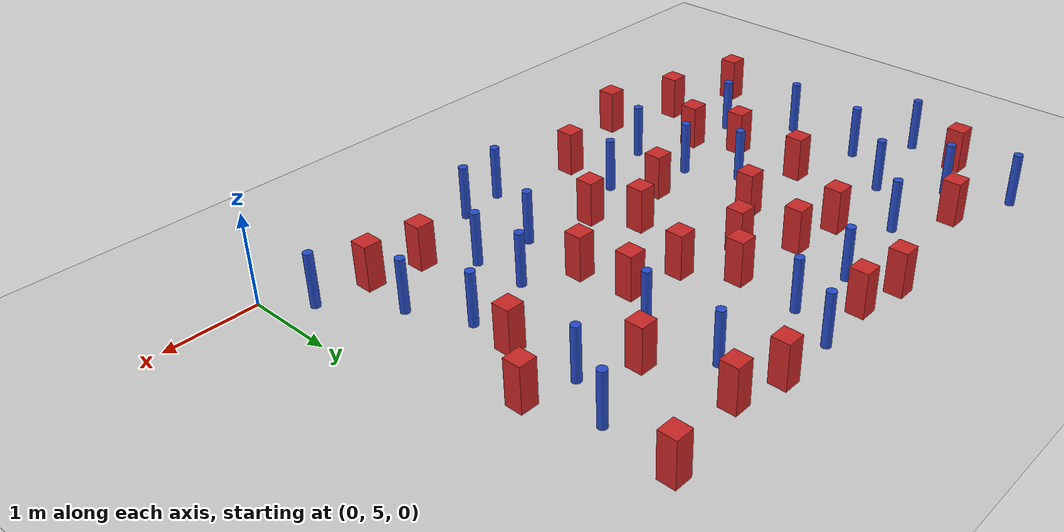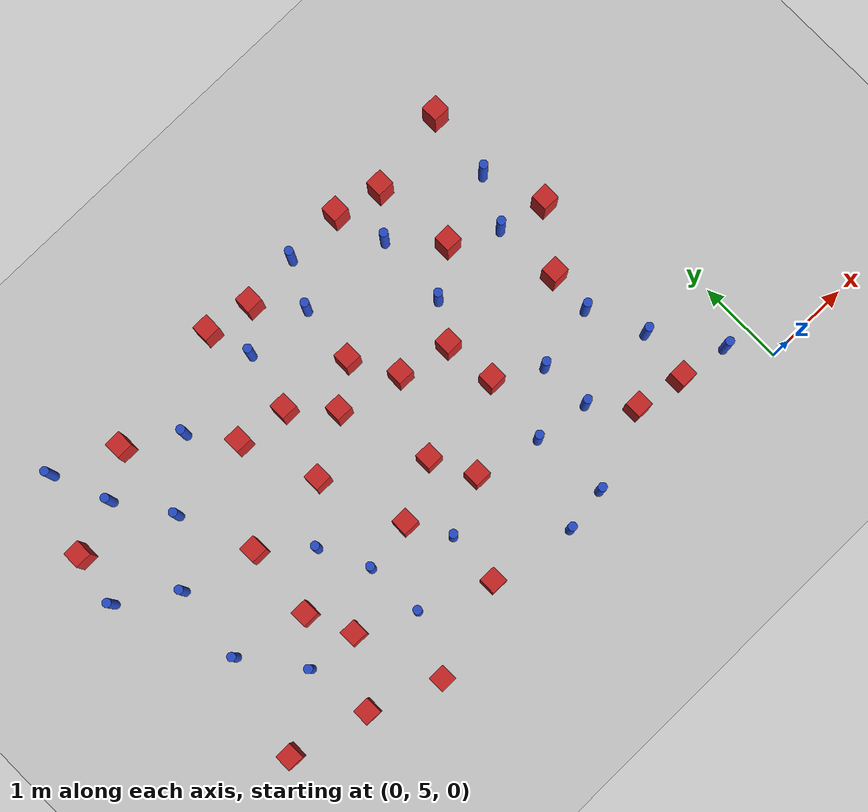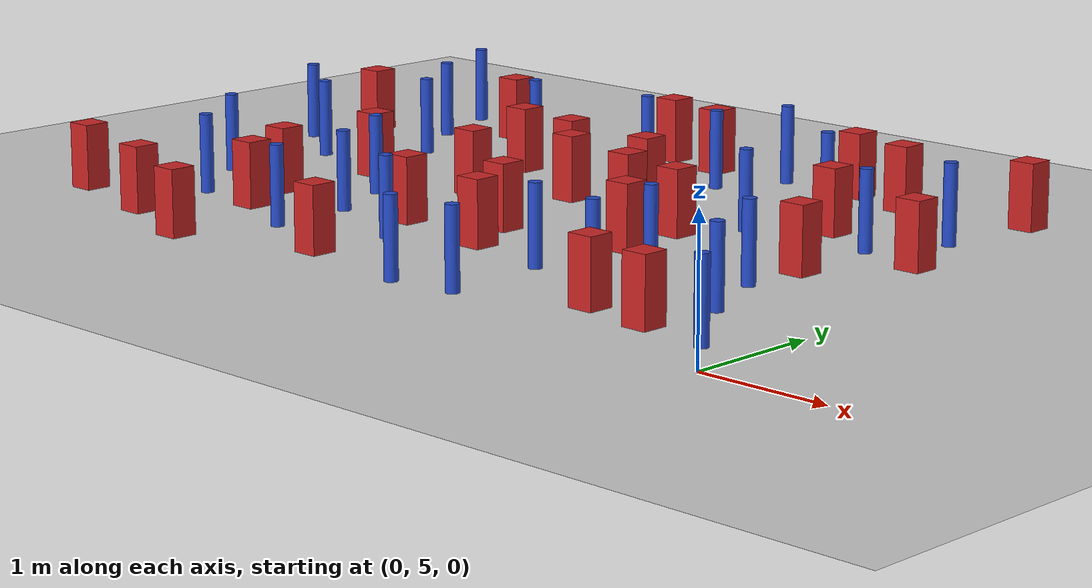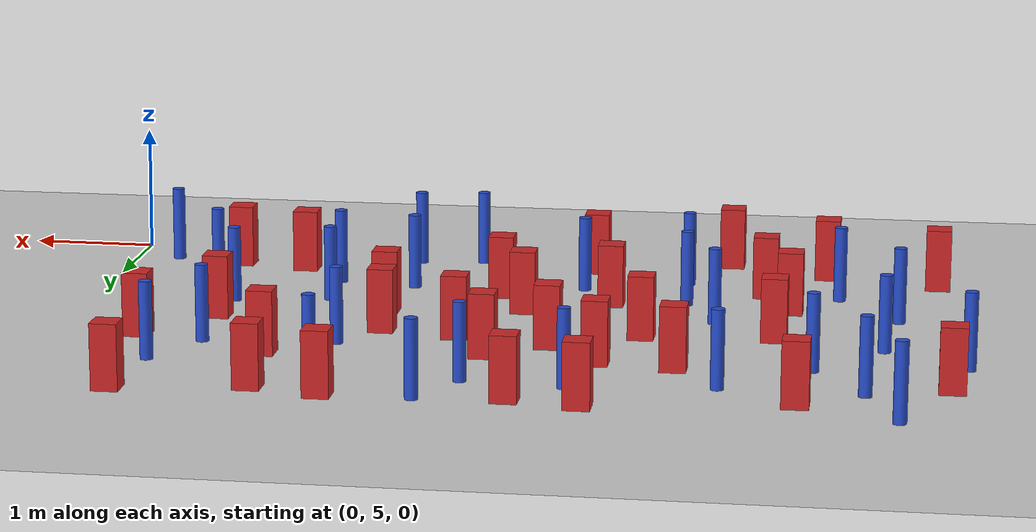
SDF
<sdf version="1.6">
 <world name="default">
  <model name="ground_plane">
   <static>1</static>
   <link name="link">
    <collision name="collision">
     <geometry><plane><normal>0 0 1</normal><size>100 100</size></plane></geometry>
     <surface><friction><ode><mu>100</mu><mu2>50</mu2></ode></friction></surface>
    </collision>
    <visual name="visual">
     <cast_shadows>0</cast_shadows>
     <geometry><plane><normal>0 0 1</normal><size>100 100</size></plane></geometry>
     <material>
      <ambient>1.0 1.0 1.0 1.0</ambient>
      <diffuse>0.8 0.8 0.8 1.0</diffuse>
      <specular>0.01 0.01 0.01 1.000000</specular>
     </material>
    </visual>
   </link>
  </model>
  <model name="pole_obstacle13">
   <static>true</static>
   <pose>-6.44039647918 9.48726860901 7.38925637345e-09 -8.471706928e-08 1.24976765081e-08 -1.74513093015e-07</pose>
   <link name="link">
    <pose>0 0 0.3 0 -0 0</pose>
    <inertial>
     <mass>1</mass>
     <inertia><ixx>0.145833</ixx><ixy>0</ixy><ixz>0</ixz><iyy>0.145833</iyy><iyz>0</iyz><izz>0.125</izz></inertia>
    </inertial>
    <collision name="collision">
     <geometry><cylinder><radius>0.05</radius><length>.6</length></cylinder></geometry>
    </collision>
    <visual name="visual">
     <geometry><cylinder><radius>0.05</radius><length>.6</length></cylinder></geometry>
     <material>
      <script><name>Gazebo/Blue</name><uri>file://media/materials/scripts/gazebo.material</uri></script>
     </material>
    </visual>
   </link>
  </model>
  <model name="square_post_obstacle23">
   <static>true</static>
   <pose>-3.88642827105 5.38813392325 1.91545236811e-07 -7.35059704564e-06 1.12565212e-07 2.39332434364e-05</pose>
   <link name="link">
    <pose>0 0 0.25 0 -0 0</pose>
    <inertial>
     <mass>100</mass>
     <inertia>
      <ixx>0.166667</ixx>
      <ixy>0</ixy>
      <ixz>0</ixz>
      <iyy>0.166667</iyy>
      <iyz>0</iyz>
      <izz>0.166667</izz>
     </inertia>
    </inertial>
    <collision name="collision"><geometry><box><size>.2 .2 .5</size></box></geometry></collision>
    <visual name="visual">
     <geometry><box><size>.2 .2 .5</size></box></geometry>
     <material>
      <script><name>Gazebo/Red</name><uri>file://media/materials/scripts/gazebo.material</uri></script>
     </material>
    </visual>
   </link>
  </model>
  <model name="pole_obstacle17">
   <static>true</static>
   <pose>-3.26010692896 8.86807212109 7.38925637345e-09 -8.47170692793e-08 1.24976764408e-08 -1.74513093041e-07</pose>
   <link name="link">
    <pose>0 0 0.3 0 -0 0</pose>
    <inertial>
     <mass>1</mass>
     <inertia><ixx>0.145833</ixx><ixy>0</ixy><ixz>0</ixz><iyy>0.145833</iyy><iyz>0</iyz><izz>0.125</izz></inertia>
    </inertial>
    <collision name="collision">
     <geometry><cylinder><radius>0.05</radius><length>.6</length></cylinder></geometry>
    </collision>
    <visual name="visual">
     <geometry><cylinder><radius>0.05</radius><length>.6</length></cylinder></geometry>
     <material>
      <script><name>Gazebo/Blue</name><uri>file://media/materials/scripts/gazebo.material</uri></script>
     </material>
    </visual>
   </link>
  </model>
  <model name="pole_obstacle27">
   <static>true</static>
   <pose>-5.12375333443 8.80899562639 7.38925637345e-09 -8.471706928e-08 1.24976765081e-08 -1.74513093015e-07</pose>
   <link name="link">
    <pose>0 0 0.3 0 -0 0</pose>
    <inertial>
     <mass>1</mass>
     <inertia><ixx>0.145833</ixx><ixy>0</ixy><ixz>0</ixz><iyy>0.145833</iyy><iyz>0</iyz><izz>0.125</izz></inertia>
    </inertial>
    <collision name="collision">
     <geometry><cylinder><radius>0.05</radius><length>.6</length></cylinder></geometry>
    </collision>
    <visual name="visual">
     <geometry><cylinder><radius>0.05</radius><length>.6</length></cylinder></geometry>
     <material>
      <script><name>Gazebo/Blue</name><uri>file://media/materials/scripts/gazebo.material</uri></script>
     </material>
    </visual>
   </link>
  </model>
  <model name="pole_obstacle30">
   <static>true</static>
   <pose>-5.90218762142 6.07693218608 7.38925637345e-09 -8.47170692796e-08 1.24976764786e-08 -1.74513093032e-07</pose>
   <link name="link">
    <pose>0 0 0.3 0 -0 0</pose>
    <inertial>
     <mass>1</mass>
     <inertia><ixx>0.145833</ixx><ixy>0</ixy><ixz>0</ixz><iyy>0.145833</iyy><iyz>0</iyz><izz>0.125</izz></inertia>
    </inertial>
    <collision name="collision">
     <geometry><cylinder><radius>0.05</radius><length>.6</length></cylinder></geometry>
    </collision>
    <visual name="visual">
     <geometry><cylinder><radius>0.05</radius><length>.6</length></cylinder></geometry>
     <material>
      <script><name>Gazebo/Blue</name><uri>file://media/materials/scripts/gazebo.material</uri></script>
     </material>
    </visual>
   </link>
  </model>
  <model name="pole_obstacle34">
   <static>true</static>
   <pose>-2.1779624521 7.95526782129 7.38925637345e-09 -8.47170692799e-08 1.24976765031e-08 -1.7451309302e-07</pose>
   <link name="link">
    <pose>0 0 0.3 0 -0 0</pose>
    <inertial>
     <mass>1</mass>
     <inertia><ixx>0.145833</ixx><ixy>0</ixy><ixz>0</ixz><iyy>0.145833</iyy><iyz>0</iyz><izz>0.125</izz></inertia>
    </inertial>
    <collision name="collision">
     <geometry><cylinder><radius>0.05</radius><length>.6</length></cylinder></geometry>
    </collision>
    <visual name="visual">
     <geometry><cylinder><radius>0.05</radius><length>.6</length></cylinder></geometry>
     <material>
      <script><name>Gazebo/Blue</name><uri>file://media/materials/scripts/gazebo.material</uri></script>
     </material>
    </visual>
   </link>
  </model>
  <model name="square_post_obstacle45">
   <static>true</static>
   <pose>-5.70250792023 9.16631879683 1.91545236811e-07 -7.35059704564e-06 1.12565212e-07 2.39332434364e-05</pose>
   <link name="link">
    <pose>0 0 0.25 0 -0 0</pose>
    <inertial>
     <mass>100</mass>
     <inertia>
      <ixx>0.166667</ixx>
      <ixy>0</ixy>
      <ixz>0</ixz>
      <iyy>0.166667</iyy>
      <iyz>0</iyz>
      <izz>0.166667</izz>
     </inertia>
    </inertial>
    <collision name="collision"><geometry><box><size>.2 .2 .5</size></box></geometry></collision>
    <visual name="visual">
     <geometry><box><size>.2 .2 .5</size></box></geometry>
     <material>
      <script><name>Gazebo/Red</name><uri>file://media/materials/scripts/gazebo.material</uri></script>
     </material>
    </visual>
   </link>
  </model>
  <model name="square_post_obstacle48">
   <static>true</static>
   <pose>-5.53184064909 6.52471061674 1.91545236811e-07 -7.35059704564e-06 1.12565212e-07 2.39332434364e-05</pose>
   <link name="link">
    <pose>0 0 0.25 0 -0 0</pose>
    <inertial>
     <mass>100</mass>
     <inertia>
      <ixx>0.166667</ixx>
      <ixy>0</ixy>
      <ixz>0</ixz>
      <iyy>0.166667</iyy>
      <iyz>0</iyz>
      <izz>0.166667</izz>
     </inertia>
    </inertial>
    <collision name="collision"><geometry><box><size>.2 .2 .5</size></box></geometry></collision>
    <visual name="visual">
     <geometry><box><size>.2 .2 .5</size></box></geometry>
     <material>
      <script><name>Gazebo/Red</name><uri>file://media/materials/scripts/gazebo.material</uri></script>
     </material>
    </visual>
   </link>
  </model>
  <model name="pole_obstacle46">
   <static>true</static>
   <pose>-4.02825660925 8.93498802025 7.38925637345e-09 -8.47170692799e-08 1.24976765075e-08 -1.74513093015e-07</pose>
   <link name="link">
    <pose>0 0 0.3 0 -0 0</pose>
    <inertial>
     <mass>1</mass>
     <inertia><ixx>0.145833</ixx><ixy>0</ixy><ixz>0</ixz><iyy>0.145833</iyy><iyz>0</iyz><izz>0.125</izz></inertia>
    </inertial>
    <collision name="collision">
     <geometry><cylinder><radius>0.05</radius><length>.6</length></cylinder></geometry>
    </collision>
    <visual name="visual">
     <geometry><cylinder><radius>0.05</radius><length>.6</length></cylinder></geometry>
     <material>
      <script><name>Gazebo/Blue</name><uri>file://media/materials/scripts/gazebo.material</uri></script>
     </material>
    </visual>
   </link>
  </model>
  <model name="pole_obstacle47">
   <static>true</static>
   <pose>-1.85244232559 6.04111435008 7.38925637345e-09 -8.47170692799e-08 1.24976765033e-08 -1.74513093018e-07</pose>
   <link name="link">
    <pose>0 0 0.3 0 -0 0</pose>
    <inertial>
     <mass>1</mass>
     <inertia><ixx>0.145833</ixx><ixy>0</ixy><ixz>0</ixz><iyy>0.145833</iyy><iyz>0</iyz><izz>0.125</izz></inertia>
    </inertial>
    <collision name="collision">
     <geometry><cylinder><radius>0.05</radius><length>.6</length></cylinder></geometry>
    </collision>
    <visual name="visual">
     <geometry><cylinder><radius>0.05</radius><length>.6</length></cylinder></geometry>
     <material>
      <script><name>Gazebo/Blue</name><uri>file://media/materials/scripts/gazebo.material</uri></script>
     </material>
    </visual>
   </link>
  </model>
  <model name="pole_obstacle50">
   <static>true</static>
   <pose>-3.85083431688 6.02337493945 7.38925637345e-09 -8.47170692798e-08 1.24976765033e-08 -1.74513093019e-07</pose>
   <link name="link">
    <pose>0 0 0.3 0 -0 0</pose>
    <inertial>
     <mass>1</mass>
     <inertia><ixx>0.145833</ixx><ixy>0</ixy><ixz>0</ixz><iyy>0.145833</iyy><iyz>0</iyz><izz>0.125</izz></inertia>
    </inertial>
    <collision name="collision">
     <geometry><cylinder><radius>0.05</radius><length>.6</length></cylinder></geometry>
    </collision>
    <visual name="visual">
     <geometry><cylinder><radius>0.05</radius><length>.6</length></cylinder></geometry>
     <material>
      <script><name>Gazebo/Blue</name><uri>file://media/materials/scripts/gazebo.material</uri></script>
     </material>
    </visual>
   </link>
  </model>
  <model name="pole_obstacle57">
   <static>true</static>
   <pose>-2.99184152287 9.38304316959 7.38925637345e-09 -8.47170692793e-08 1.24976764408e-08 -1.74513093041e-07</pose>
   <link name="link">
    <pose>0 0 0.3 0 -0 0</pose>
    <inertial>
     <mass>1</mass>
     <inertia><ixx>0.145833</ixx><ixy>0</ixy><ixz>0</ixz><iyy>0.145833</iyy><iyz>0</iyz><izz>0.125</izz></inertia>
    </inertial>
    <collision name="collision">
     <geometry><cylinder><radius>0.05</radius><length>.6</length></cylinder></geometry>
    </collision>
    <visual name="visual">
     <geometry><cylinder><radius>0.05</radius><length>.6</length></cylinder></geometry>
     <material>
      <script><name>Gazebo/Blue</name><uri>file://media/materials/scripts/gazebo.material</uri></script>
     </material>
    </visual>
   </link>
  </model>
  <model name="square_post_obstacle69">
   <static>true</static>
   <pose>-4.97964011506 5.03403945031 1.91545236811e-07 -7.35059704564e-06 1.12565212e-07 2.39332434364e-05</pose>
   <link name="link">
    <pose>0 0 0.25 0 -0 0</pose>
    <inertial>
     <mass>100</mass>
     <inertia>
      <ixx>0.166667</ixx>
      <ixy>0</ixy>
      <ixz>0</ixz>
      <iyy>0.166667</iyy>
      <iyz>0</iyz>
      <izz>0.166667</izz>
     </inertia>
    </inertial>
    <collision name="collision"><geometry><box><size>.2 .2 .5</size></box></geometry></collision>
    <visual name="visual">
     <geometry><box><size>.2 .2 .5</size></box></geometry>
     <material>
      <script><name>Gazebo/Red</name><uri>file://media/materials/scripts/gazebo.material</uri></script>
     </material>
    </visual>
   </link>
  </model>
  <model name="square_post_obstacle72">
   <static>true</static>
   <pose>-2.38393506014 6.93142251107 1.91545236811e-07 -7.35059704564e-06 1.12565212e-07 2.39332434364e-05</pose>
   <link name="link">
    <pose>0 0 0.25 0 -0 0</pose>
    <inertial>
     <mass>100</mass>
     <inertia>
      <ixx>0.166667</ixx>
      <ixy>0</ixy>
      <ixz>0</ixz>
      <iyy>0.166667</iyy>
      <iyz>0</iyz>
      <izz>0.166667</izz>
     </inertia>
    </inertial>
    <collision name="collision"><geometry><box><size>.2 .2 .5</size></box></geometry></collision>
    <visual name="visual">
     <geometry><box><size>.2 .2 .5</size></box></geometry>
     <material>
      <script><name>Gazebo/Red</name><uri>file://media/materials/scripts/gazebo.material</uri></script>
     </material>
    </visual>
   </link>
  </model>
  <model name="pole_obstacle77">
   <static>true</static>
   <pose>-6.18366212318 8.84186964665 7.38925637345e-09 -8.471706928e-08 1.24976765081e-08 -1.74513093015e-07</pose>
   <link name="link">
    <pose>0 0 0.3 0 -0 0</pose>
    <inertial>
     <mass>1</mass>
     <inertia><ixx>0.145833</ixx><ixy>0</ixy><ixz>0</ixz><iyy>0.145833</iyy><iyz>0</iyz><izz>0.125</izz></inertia>
    </inertial>
    <collision name="collision">
     <geometry><cylinder><radius>0.05</radius><length>.6</length></cylinder></geometry>
    </collision>
    <visual name="visual">
     <geometry><cylinder><radius>0.05</radius><length>.6</length></cylinder></geometry>
     <material>
      <script><name>Gazebo/Blue</name><uri>file://media/materials/scripts/gazebo.material</uri></script>
     </material>
    </visual>
   </link>
  </model>
  <model name="pole_obstacle82">
   <static>true</static>
   <pose>-1.15674981613 8.0379942242 7.38925637345e-09 -8.471706928e-08 1.24976765113e-08 -1.74513093014e-07</pose>
   <link name="link">
    <pose>0 0 0.3 0 -0 0</pose>
    <inertial>
     <mass>1</mass>
     <inertia><ixx>0.145833</ixx><ixy>0</ixy><ixz>0</ixz><iyy>0.145833</iyy><iyz>0</iyz><izz>0.125</izz></inertia>
    </inertial>
    <collision name="collision">
     <geometry><cylinder><radius>0.05</radius><length>.6</length></cylinder></geometry>
    </collision>
    <visual name="visual">
     <geometry><cylinder><radius>0.05</radius><length>.6</length></cylinder></geometry>
     <material>
      <script><name>Gazebo/Blue</name><uri>file://media/materials/scripts/gazebo.material</uri></script>
     </material>
    </visual>
   </link>
  </model>
  <model name="pole_obstacle89">
   <static>true</static>
   <pose>-1.12663115622 6.76977434522 7.38925637345e-09 -8.47170692799e-08 1.24976765033e-08 -1.74513093018e-07</pose>
   <link name="link">
    <pose>0 0 0.3 0 -0 0</pose>
    <inertial>
     <mass>1</mass>
     <inertia><ixx>0.145833</ixx><ixy>0</ixy><ixz>0</ixz><iyy>0.145833</iyy><iyz>0</iyz><izz>0.125</izz></inertia>
    </inertial>
    <collision name="collision">
     <geometry><cylinder><radius>0.05</radius><length>.6</length></cylinder></geometry>
    </collision>
    <visual name="visual">
     <geometry><cylinder><radius>0.05</radius><length>.6</length></cylinder></geometry>
     <material>
      <script><name>Gazebo/Blue</name><uri>file://media/materials/scripts/gazebo.material</uri></script>
     </material>
    </visual>
   </link>
  </model>
  <model name="pole_obstacle95">
   <static>true</static>
   <pose>-4.96622983246 6.94463585222 7.38925637345e-09 -8.47170692796e-08 1.24976764786e-08 -1.74513093032e-07</pose>
   <link name="link">
    <pose>0 0 0.3 0 -0 0</pose>
    <inertial>
     <mass>1</mass>
     <inertia><ixx>0.145833</ixx><ixy>0</ixy><ixz>0</ixz><iyy>0.145833</iyy><iyz>0</iyz><izz>0.125</izz></inertia>
    </inertial>
    <collision name="collision">
     <geometry><cylinder><radius>0.05</radius><length>.6</length></cylinder></geometry>
    </collision>
    <visual name="visual">
     <geometry><cylinder><radius>0.05</radius><length>.6</length></cylinder></geometry>
     <material>
      <script><name>Gazebo/Blue</name><uri>file://media/materials/scripts/gazebo.material</uri></script>
     </material>
    </visual>
   </link>
  </model>
  <model name="square_post_obstacle90">
   <static>true</static>
   <pose>-4.18159011079 8.24602097663 1.91545236811e-07 -7.35059704564e-06 1.12565212e-07 2.39332434364e-05</pose>
   <link name="link">
    <pose>0 0 0.25 0 -0 0</pose>
    <inertial>
     <mass>100</mass>
     <inertia>
      <ixx>0.166667</ixx>
      <ixy>0</ixy>
      <ixz>0</ixz>
      <iyy>0.166667</iyy>
      <iyz>0</iyz>
      <izz>0.166667</izz>
     </inertia>
    </inertial>
    <collision name="collision"><geometry><box><size>.2 .2 .5</size></box></geometry></collision>
    <visual name="visual">
     <geometry><box><size>.2 .2 .5</size></box></geometry>
     <material>
      <script><name>Gazebo/Red</name><uri>file://media/materials/scripts/gazebo.material</uri></script>
     </material>
    </visual>
   </link>
  </model>
  <model name="pole_obstacle102">
   <static>true</static>
   <pose>-1.87773299122 6.63169610025 7.38925637345e-09 -8.47170692799e-08 1.24976765033e-08 -1.74513093018e-07</pose>
   <link name="link">
    <pose>0 0 0.3 0 -0 0</pose>
    <inertial>
     <mass>1</mass>
     <inertia><ixx>0.145833</ixx><ixy>0</ixy><ixz>0</ixz><iyy>0.145833</iyy><iyz>0</iyz><izz>0.125</izz></inertia>
    </inertial>
    <collision name="collision">
     <geometry><cylinder><radius>0.05</radius><length>.6</length></cylinder></geometry>
    </collision>
    <visual name="visual">
     <geometry><cylinder><radius>0.05</radius><length>.6</length></cylinder></geometry>
     <material>
      <script><name>Gazebo/Blue</name><uri>file://media/materials/scripts/gazebo.material</uri></script>
     </material>
    </visual>
   </link>
  </model>
  <model name="square_post_obstacle92">
   <static>true</static>
   <pose>-3.2173856991 6.30843144289 1.91545236811e-07 -7.35059704564e-06 1.12565212e-07 2.39332434364e-05</pose>
   <link name="link">
    <pose>0 0 0.25 0 -0 0</pose>
    <inertial>
     <mass>100</mass>
     <inertia>
      <ixx>0.166667</ixx>
      <ixy>0</ixy>
      <ixz>0</ixz>
      <iyy>0.166667</iyy>
      <iyz>0</iyz>
      <izz>0.166667</izz>
     </inertia>
    </inertial>
    <collision name="collision"><geometry><box><size>.2 .2 .5</size></box></geometry></collision>
    <visual name="visual">
     <geometry><box><size>.2 .2 .5</size></box></geometry>
     <material>
      <script><name>Gazebo/Red</name><uri>file://media/materials/scripts/gazebo.material</uri></script>
     </material>
    </visual>
   </link>
  </model>
  <model name="square_post_obstacle93">
   <static>true</static>
   <pose>-3.32841613555 8.15983913552 1.91545236811e-07 -7.35059704564e-06 1.12565212e-07 2.39332434364e-05</pose>
   <link name="link">
    <pose>0 0 0.25 0 -0 0</pose>
    <inertial>
     <mass>100</mass>
     <inertia>
      <ixx>0.166667</ixx>
      <ixy>0</ixy>
      <ixz>0</ixz>
      <iyy>0.166667</iyy>
      <iyz>0</iyz>
      <izz>0.166667</izz>
     </inertia>
    </inertial>
    <collision name="collision"><geometry><box><size>.2 .2 .5</size></box></geometry></collision>
    <visual name="visual">
     <geometry><box><size>.2 .2 .5</size></box></geometry>
     <material>
      <script><name>Gazebo/Red</name><uri>file://media/materials/scripts/gazebo.material</uri></script>
     </material>
    </visual>
   </link>
  </model>
  <model name="square_post_obstacle101">
   <static>true</static>
   <pose>-1.77780974908 9.25629348462 1.91545236811e-07 -7.35059704564e-06 1.12565212e-07 2.39332434364e-05</pose>
   <link name="link">
    <pose>0 0 0.25 0 -0 0</pose>
    <inertial>
     <mass>100</mass>
     <inertia>
      <ixx>0.166667</ixx>
      <ixy>0</ixy>
      <ixz>0</ixz>
      <iyy>0.166667</iyy>
      <iyz>0</iyz>
      <izz>0.166667</izz>
     </inertia>
    </inertial>
    <collision name="collision"><geometry><box><size>.2 .2 .5</size></box></geometry></collision>
    <visual name="visual">
     <geometry><box><size>.2 .2 .5</size></box></geometry>
     <material>
      <script><name>Gazebo/Red</name><uri>file://media/materials/scripts/gazebo.material</uri></script>
     </material>
    </visual>
   </link>
  </model>
  <model name="pole_obstacle115">
   <static>true</static>
   <pose>-6.2924871837 7.6079009055 7.38925637345e-09 -8.47170692796e-08 1.24976764786e-08 -1.74513093032e-07</pose>
   <link name="link">
    <pose>0 0 0.3 0 -0 0</pose>
    <inertial>
     <mass>1</mass>
     <inertia><ixx>0.145833</ixx><ixy>0</ixy><ixz>0</ixz><iyy>0.145833</iyy><iyz>0</iyz><izz>0.125</izz></inertia>
    </inertial>
    <collision name="collision">
     <geometry><cylinder><radius>0.05</radius><length>.6</length></cylinder></geometry>
    </collision>
    <visual name="visual">
     <geometry><cylinder><radius>0.05</radius><length>.6</length></cylinder></geometry>
     <material>
      <script><name>Gazebo/Blue</name><uri>file://media/materials/scripts/gazebo.material</uri></script>
     </material>
    </visual>
   </link>
  </model>
  <model name="square_post_obstacle108">
   <static>true</static>
   <pose>-4.7677067139 8.32890515588 1.91545236811e-07 -7.35059704564e-06 1.12565212e-07 2.39332434364e-05</pose>
   <link name="link">
    <pose>0 0 0.25 0 -0 0</pose>
    <inertial>
     <mass>100</mass>
     <inertia>
      <ixx>0.166667</ixx>
      <ixy>0</ixy>
      <ixz>0</ixz>
      <iyy>0.166667</iyy>
      <iyz>0</iyz>
      <izz>0.166667</izz>
     </inertia>
    </inertial>
    <collision name="collision"><geometry><box><size>.2 .2 .5</size></box></geometry></collision>
    <visual name="visual">
     <geometry><box><size>.2 .2 .5</size></box></geometry>
     <material>
      <script><name>Gazebo/Red</name><uri>file://media/materials/scripts/gazebo.material</uri></script>
     </material>
    </visual>
   </link>
  </model>
  <model name="pole_obstacle122">
   <static>true</static>
   <pose>-4.67218156826 5.71932839307 7.38925637345e-09 -8.47170692796e-08 1.24976764786e-08 -1.74513093032e-07</pose>
   <link name="link">
    <pose>0 0 0.3 0 -0 0</pose>
    <inertial>
     <mass>1</mass>
     <inertia><ixx>0.145833</ixx><ixy>0</ixy><ixz>0</ixz><iyy>0.145833</iyy><iyz>0</iyz><izz>0.125</izz></inertia>
    </inertial>
    <collision name="collision">
     <geometry><cylinder><radius>0.05</radius><length>.6</length></cylinder></geometry>
    </collision>
    <visual name="visual">
     <geometry><cylinder><radius>0.05</radius><length>.6</length></cylinder></geometry>
     <material>
      <script><name>Gazebo/Blue</name><uri>file://media/materials/scripts/gazebo.material</uri></script>
     </material>
    </visual>
   </link>
  </model>
  <model name="square_post_obstacle115">
   <static>true</static>
   <pose>-0.781212544834 9.42266509782 1.91545236811e-07 -7.35059704564e-06 1.12565212e-07 2.39332434364e-05</pose>
   <link name="link">
    <pose>0 0 0.25 0 -0 0</pose>
    <inertial>
     <mass>100</mass>
     <inertia>
      <ixx>0.166667</ixx>
      <ixy>0</ixy>
      <ixz>0</ixz>
      <iyy>0.166667</iyy>
      <iyz>0</iyz>
      <izz>0.166667</izz>
     </inertia>
    </inertial>
    <collision name="collision"><geometry><box><size>.2 .2 .5</size></box></geometry></collision>
    <visual name="visual">
     <geometry><box><size>.2 .2 .5</size></box></geometry>
     <material>
      <script><name>Gazebo/Red</name><uri>file://media/materials/scripts/gazebo.material</uri></script>
     </material>
    </visual>
   </link>
  </model>
  <model name="square_post_obstacle117">
   <static>true</static>
   <pose>-6.67382146757 5.56837264222 1.91545236811e-07 -7.35059704564e-06 1.12565212e-07 2.39332434364e-05</pose>
   <link name="link">
    <pose>0 0 0.25 0 -0 0</pose>
    <inertial>
     <mass>100</mass>
     <inertia>
      <ixx>0.166667</ixx>
      <ixy>0</ixy>
      <ixz>0</ixz>
      <iyy>0.166667</iyy>
      <iyz>0</iyz>
      <izz>0.166667</izz>
     </inertia>
    </inertial>
    <collision name="collision"><geometry><box><size>.2 .2 .5</size></box></geometry></collision>
    <visual name="visual">
     <geometry><box><size>.2 .2 .5</size></box></geometry>
     <material>
      <script><name>Gazebo/Red</name><uri>file://media/materials/scripts/gazebo.material</uri></script>
     </material>
    </visual>
   </link>
  </model>
  <model name="square_post_obstacle126">
   <static>true</static>
   <pose>-3.77676736881 7.82656806944 1.91545236811e-07 -7.35059704564e-06 1.12565212e-07 2.39332434364e-05</pose>
   <link name="link">
    <pose>0 0 0.25 0 -0 0</pose>
    <inertial>
     <mass>100</mass>
     <inertia>
      <ixx>0.166667</ixx>
      <ixy>0</ixy>
      <ixz>0</ixz>
      <iyy>0.166667</iyy>
      <iyz>0</iyz>
      <izz>0.166667</izz>
     </inertia>
    </inertial>
    <collision name="collision"><geometry><box><size>.2 .2 .5</size></box></geometry></collision>
    <visual name="visual">
     <geometry><box><size>.2 .2 .5</size></box></geometry>
     <material>
      <script><name>Gazebo/Red</name><uri>file://media/materials/scripts/gazebo.material</uri></script>
     </material>
    </visual>
   </link>
  </model>
  <model name="pole_obstacle148">
   <static>true</static>
   <pose>-2.13981645294 8.82054663086 7.38925637345e-09 -8.47170692793e-08 1.24976764408e-08 -1.74513093041e-07</pose>
   <link name="link">
    <pose>0 0 0.3 0 -0 0</pose>
    <inertial>
     <mass>1</mass>
     <inertia><ixx>0.145833</ixx><ixy>0</ixy><ixz>0</ixz><iyy>0.145833</iyy><iyz>0</iyz><izz>0.125</izz></inertia>
    </inertial>
    <collision name="collision">
     <geometry><cylinder><radius>0.05</radius><length>.6</length></cylinder></geometry>
    </collision>
    <visual name="visual">
     <geometry><cylinder><radius>0.05</radius><length>.6</length></cylinder></geometry>
     <material>
      <script><name>Gazebo/Blue</name><uri>file://media/materials/scripts/gazebo.material</uri></script>
     </material>
    </visual>
   </link>
  </model>
  <model name="square_post_obstacle140">
   <static>true</static>
   <pose>-5.31113129489 6.01989400184 1.91545236811e-07 -7.35059704564e-06 1.12565212e-07 2.39332434364e-05</pose>
   <link name="link">
    <pose>0 0 0.25 0 -0 0</pose>
    <inertial>
     <mass>100</mass>
     <inertia>
      <ixx>0.166667</ixx>
      <ixy>0</ixy>
      <ixz>0</ixz>
      <iyy>0.166667</iyy>
      <iyz>0</iyz>
      <izz>0.166667</izz>
     </inertia>
    </inertial>
    <collision name="collision"><geometry><box><size>.2 .2 .5</size></box></geometry></collision>
    <visual name="visual">
     <geometry><box><size>.2 .2 .5</size></box></geometry>
     <material>
      <script><name>Gazebo/Red</name><uri>file://media/materials/scripts/gazebo.material</uri></script>
     </material>
    </visual>
   </link>
  </model>
  <model name="square_post_obstacle143">
   <static>true</static>
   <pose>-1.48800279479 5.63152693915 1.91545236811e-07 -7.35059704564e-06 1.12565212e-07 2.39332434364e-05</pose>
   <link name="link">
    <pose>0 0 0.25 0 -0 0</pose>
    <inertial>
     <mass>100</mass>
     <inertia>
      <ixx>0.166667</ixx>
      <ixy>0</ixy>
      <ixz>0</ixz>
      <iyy>0.166667</iyy>
      <iyz>0</iyz>
      <izz>0.166667</izz>
     </inertia>
    </inertial>
    <collision name="collision"><geometry><box><size>.2 .2 .5</size></box></geometry></collision>
    <visual name="visual">
     <geometry><box><size>.2 .2 .5</size></box></geometry>
     <material>
      <script><name>Gazebo/Red</name><uri>file://media/materials/scripts/gazebo.material</uri></script>
     </material>
    </visual>
   </link>
  </model>
  <model name="square_post_obstacle144">
   <static>true</static>
   <pose>-4.44659335062 7.45662614467 1.91545236811e-07 -7.35059704564e-06 1.12565212e-07 2.39332434364e-05</pose>
   <link name="link">
    <pose>0 0 0.25 0 -0 0</pose>
    <inertial>
     <mass>100</mass>
     <inertia>
      <ixx>0.166667</ixx>
      <ixy>0</ixy>
      <ixz>0</ixz>
      <iyy>0.166667</iyy>
      <iyz>0</iyz>
      <izz>0.166667</izz>
     </inertia>
    </inertial>
    <collision name="collision"><geometry><box><size>.2 .2 .5</size></box></geometry></collision>
    <visual name="visual">
     <geometry><box><size>.2 .2 .5</size></box></geometry>
     <material>
      <script><name>Gazebo/Red</name><uri>file://media/materials/scripts/gazebo.material</uri></script>
     </material>
    </visual>
   </link>
  </model>
  <model name="square_post_obstacle145">
   <static>true</static>
   <pose>-4.11423589233 6.47485336474 1.91545236811e-07 -7.35059704564e-06 1.12565212e-07 2.39332434364e-05</pose>
   <link name="link">
    <pose>0 0 0.25 0 -0 0</pose>
    <inertial>
     <mass>100</mass>
     <inertia>
      <ixx>0.166667</ixx>
      <ixy>0</ixy>
      <ixz>0</ixz>
      <iyy>0.166667</iyy>
      <iyz>0</iyz>
      <izz>0.166667</izz>
     </inertia>
    </inertial>
    <collision name="collision"><geometry><box><size>.2 .2 .5</size></box></geometry></collision>
    <visual name="visual">
     <geometry><box><size>.2 .2 .5</size></box></geometry>
     <material>
      <script><name>Gazebo/Red</name><uri>file://media/materials/scripts/gazebo.material</uri></script>
     </material>
    </visual>
   </link>
  </model>
  <model name="square_post_obstacle153">
   <static>true</static>
   <pose>-0.623475087878 7.9083196984 1.91545236811e-07 -7.35059704564e-06 1.12565212e-07 2.39332434364e-05</pose>
   <link name="link">
    <pose>0 0 0.25 0 -0 0</pose>
    <inertial>
     <mass>100</mass>
     <inertia>
      <ixx>0.166667</ixx>
      <ixy>0</ixy>
      <ixz>0</ixz>
      <iyy>0.166667</iyy>
      <iyz>0</iyz>
      <izz>0.166667</izz>
     </inertia>
    </inertial>
    <collision name="collision"><geometry><box><size>.2 .2 .5</size></box></geometry></collision>
    <visual name="visual">
     <geometry><box><size>.2 .2 .5</size></box></geometry>
     <material>
      <script><name>Gazebo/Red</name><uri>file://media/materials/scripts/gazebo.material</uri></script>
     </material>
    </visual>
   </link>
  </model>
  <model name="pole_obstacle167">
   <static>true</static>
   <pose>-5.78040862386 8.23448389983 7.38925637345e-09 -8.471706928e-08 1.24976765081e-08 -1.74513093015e-07</pose>
   <link name="link">
    <pose>0 0 0.3 0 -0 0</pose>
    <inertial>
     <mass>1</mass>
     <inertia><ixx>0.145833</ixx><ixy>0</ixy><ixz>0</ixz><iyy>0.145833</iyy><iyz>0</iyz><izz>0.125</izz></inertia>
    </inertial>
    <collision name="collision">
     <geometry><cylinder><radius>0.05</radius><length>.6</length></cylinder></geometry>
    </collision>
    <visual name="visual">
     <geometry><cylinder><radius>0.05</radius><length>.6</length></cylinder></geometry>
     <material>
      <script><name>Gazebo/Blue</name><uri>file://media/materials/scripts/gazebo.material</uri></script>
     </material>
    </visual>
   </link>
  </model>
  <model name="pole_obstacle172">
   <static>true</static>
   <pose>-4.70600620406 6.38841216344 7.38925637345e-09 -8.47170692796e-08 1.24976764786e-08 -1.74513093032e-07</pose>
   <link name="link">
    <pose>0 0 0.3 0 -0 0</pose>
    <inertial>
     <mass>1</mass>
     <inertia><ixx>0.145833</ixx><ixy>0</ixy><ixz>0</ixz><iyy>0.145833</iyy><iyz>0</iyz><izz>0.125</izz></inertia>
    </inertial>
    <collision name="collision">
     <geometry><cylinder><radius>0.05</radius><length>.6</length></cylinder></geometry>
    </collision>
    <visual name="visual">
     <geometry><cylinder><radius>0.05</radius><length>.6</length></cylinder></geometry>
     <material>
      <script><name>Gazebo/Blue</name><uri>file://media/materials/scripts/gazebo.material</uri></script>
     </material>
    </visual>
   </link>
  </model>
  <model name="pole_obstacle173">
   <static>true</static>
   <pose>-6.38331620374 6.7224258277 7.38925637345e-09 -8.47170692796e-08 1.24976764786e-08 -1.74513093032e-07</pose>
   <link name="link">
    <pose>0 0 0.3 0 -0 0</pose>
    <inertial>
     <mass>1</mass>
     <inertia><ixx>0.145833</ixx><ixy>0</ixy><ixz>0</ixz><iyy>0.145833</iyy><iyz>0</iyz><izz>0.125</izz></inertia>
    </inertial>
    <collision name="collision">
     <geometry><cylinder><radius>0.05</radius><length>.6</length></cylinder></geometry>
    </collision>
    <visual name="visual">
     <geometry><cylinder><radius>0.05</radius><length>.6</length></cylinder></geometry>
     <material>
      <script><name>Gazebo/Blue</name><uri>file://media/materials/scripts/gazebo.material</uri></script>
     </material>
    </visual>
   </link>
  </model>
  <model name="pole_obstacle176">
   <static>true</static>
   <pose>-0.349598590617 5.42788591438 7.38925637345e-09 -8.471706928e-08 1.24976765079e-08 -1.74513093015e-07</pose>
   <link name="link">
    <pose>0 0 0.3 0 -0 0</pose>
    <inertial>
     <mass>1</mass>
     <inertia><ixx>0.145833</ixx><ixy>0</ixy><ixz>0</ixz><iyy>0.145833</iyy><iyz>0</iyz><izz>0.125</izz></inertia>
    </inertial>
    <collision name="collision">
     <geometry><cylinder><radius>0.05</radius><length>.6</length></cylinder></geometry>
    </collision>
    <visual name="visual">
     <geometry><cylinder><radius>0.05</radius><length>.6</length></cylinder></geometry>
     <material>
      <script><name>Gazebo/Blue</name><uri>file://media/materials/scripts/gazebo.material</uri></script>
     </material>
    </visual>
   </link>
  </model>
  <model name="square_post_obstacle168">
   <static>true</static>
   <pose>-1.67891494094 8.31547173463 1.91545236811e-07 -7.35059704564e-06 1.12565212e-07 2.39332434364e-05</pose>
   <link name="link">
    <pose>0 0 0.25 0 -0 0</pose>
    <inertial>
     <mass>100</mass>
     <inertia>
      <ixx>0.166667</ixx>
      <ixy>0</ixy>
      <ixz>0</ixz>
      <iyy>0.166667</iyy>
      <iyz>0</iyz>
      <izz>0.166667</izz>
     </inertia>
    </inertial>
    <collision name="collision"><geometry><box><size>.2 .2 .5</size></box></geometry></collision>
    <visual name="visual">
     <geometry><box><size>.2 .2 .5</size></box></geometry>
     <material>
      <script><name>Gazebo/Red</name><uri>file://media/materials/scripts/gazebo.material</uri></script>
     </material>
    </visual>
   </link>
  </model>
  <model name="square_post_obstacle175">
   <static>true</static>
   <pose>-4.18460183278 9.42134023679 1.91545236811e-07 -7.35059704564e-06 1.12565212e-07 2.39332434364e-05</pose>
   <link name="link">
    <pose>0 0 0.25 0 -0 0</pose>
    <inertial>
     <mass>100</mass>
     <inertia>
      <ixx>0.166667</ixx>
      <ixy>0</ixy>
      <ixz>0</ixz>
      <iyy>0.166667</iyy>
      <iyz>0</iyz>
      <izz>0.166667</izz>
     </inertia>
    </inertial>
    <collision name="collision"><geometry><box><size>.2 .2 .5</size></box></geometry></collision>
    <visual name="visual">
     <geometry><box><size>.2 .2 .5</size></box></geometry>
     <material>
      <script><name>Gazebo/Red</name><uri>file://media/materials/scripts/gazebo.material</uri></script>
     </material>
    </visual>
   </link>
  </model>
  <model name="square_post_obstacle177">
   <static>true</static>
   <pose>-5.77647782692 5.33915454318 1.91545236811e-07 -7.35059704564e-06 1.12565212e-07 2.39332434364e-05</pose>
   <link name="link">
    <pose>0 0 0.25 0 -0 0</pose>
    <inertial>
     <mass>100</mass>
     <inertia>
      <ixx>0.166667</ixx>
      <ixy>0</ixy>
      <ixz>0</ixz>
      <iyy>0.166667</iyy>
      <iyz>0</iyz>
      <izz>0.166667</izz>
     </inertia>
    </inertial>
    <collision name="collision"><geometry><box><size>.2 .2 .5</size></box></geometry></collision>
    <visual name="visual">
     <geometry><box><size>.2 .2 .5</size></box></geometry>
     <material>
      <script><name>Gazebo/Red</name><uri>file://media/materials/scripts/gazebo.material</uri></script>
     </material>
    </visual>
   </link>
  </model>
  <model name="square_post_obstacle179">
   <static>true</static>
   <pose>-6.80023423038 8.63365327411 1.91545236811e-07 -7.35059704564e-06 1.12565212e-07 2.39332434364e-05</pose>
   <link name="link">
    <pose>0 0 0.25 0 -0 0</pose>
    <inertial>
     <mass>100</mass>
     <inertia>
      <ixx>0.166667</ixx>
      <ixy>0</ixy>
      <ixz>0</ixz>
      <iyy>0.166667</iyy>
      <iyz>0</iyz>
      <izz>0.166667</izz>
     </inertia>
    </inertial>
    <collision name="collision"><geometry><box><size>.2 .2 .5</size></box></geometry></collision>
    <visual name="visual">
     <geometry><box><size>.2 .2 .5</size></box></geometry>
     <material>
      <script><name>Gazebo/Red</name><uri>file://media/materials/scripts/gazebo.material</uri></script>
     </material>
    </visual>
   </link>
  </model>
  <model name="square_post_obstacle181">
   <static>true</static>
   <pose>-1.10437913716 7.27305128442 1.91545236811e-07 -7.35059704564e-06 1.12565212e-07 2.39332434364e-05</pose>
   <link name="link">
    <pose>0 0 0.25 0 -0 0</pose>
    <inertial>
     <mass>100</mass>
     <inertia>
      <ixx>0.166667</ixx>
      <ixy>0</ixy>
      <ixz>0</ixz>
      <iyy>0.166667</iyy>
      <iyz>0</iyz>
      <izz>0.166667</izz>
     </inertia>
    </inertial>
    <collision name="collision"><geometry><box><size>.2 .2 .5</size></box></geometry></collision>
    <visual name="visual">
     <geometry><box><size>.2 .2 .5</size></box></geometry>
     <material>
      <script><name>Gazebo/Red</name><uri>file://media/materials/scripts/gazebo.material</uri></script>
     </material>
    </visual>
   </link>
  </model>
  <model name="square_post_obstacle186">
   <static>true</static>
   <pose>-5.45355347591 7.38248292433 1.91545236811e-07 -7.35059704564e-06 1.12565212e-07 2.39332434364e-05</pose>
   <link name="link">
    <pose>0 0 0.25 0 -0 0</pose>
    <inertial>
     <mass>100</mass>
     <inertia>
      <ixx>0.166667</ixx>
      <ixy>0</ixy>
      <ixz>0</ixz>
      <iyy>0.166667</iyy>
      <iyz>0</iyz>
      <izz>0.166667</izz>
     </inertia>
    </inertial>
    <collision name="collision"><geometry><box><size>.2 .2 .5</size></box></geometry></collision>
    <visual name="visual">
     <geometry><box><size>.2 .2 .5</size></box></geometry>
     <material>
      <script><name>Gazebo/Red</name><uri>file://media/materials/scripts/gazebo.material</uri></script>
     </material>
    </visual>
   </link>
  </model>
  <model name="square_post_obstacle194">
   <static>true</static>
   <pose>-3.04168312901 7.64888347605 1.91545236811e-07 -7.35059704564e-06 1.12565212e-07 2.39332434364e-05</pose>
   <link name="link">
    <pose>0 0 0.25 0 -0 0</pose>
    <inertial>
     <mass>100</mass>
     <inertia>
      <ixx>0.166667</ixx>
      <ixy>0</ixy>
      <ixz>0</ixz>
      <iyy>0.166667</iyy>
      <iyz>0</iyz>
      <izz>0.166667</izz>
     </inertia>
    </inertial>
    <collision name="collision"><geometry><box><size>.2 .2 .5</size></box></geometry></collision>
    <visual name="visual">
     <geometry><box><size>.2 .2 .5</size></box></geometry>
     <material>
      <script><name>Gazebo/Red</name><uri>file://media/materials/scripts/gazebo.material</uri></script>
     </material>
    </visual>
   </link>
  </model>
  <model name="pole_obstacle189">
   <static>true</static>
   <pose>-0.863339972766 8.60359382682 7.38925637345e-09 -8.47170692797e-08 1.249767648e-08 -1.74513093032e-07</pose>
   <link name="link">
    <pose>0 0 0.3 0 -0 0</pose>
    <inertial>
     <mass>1</mass>
     <inertia><ixx>0.145833</ixx><ixy>0</ixy><ixz>0</ixz><iyy>0.145833</iyy><iyz>0</iyz><izz>0.125</izz></inertia>
    </inertial>
    <collision name="collision">
     <geometry><cylinder><radius>0.05</radius><length>.6</length></cylinder></geometry>
    </collision>
    <visual name="visual">
     <geometry><cylinder><radius>0.05</radius><length>.6</length></cylinder></geometry>
     <material>
      <script><name>Gazebo/Blue</name><uri>file://media/materials/scripts/gazebo.material</uri></script>
     </material>
    </visual>
   </link>
  </model>
  <model name="pole_obstacle196">
   <static>true</static>
   <pose>-2.91063288685 5.20460996918 7.38925637345e-09 -8.47170692798e-08 1.24976765033e-08 -1.74513093019e-07</pose>
   <link name="link">
    <pose>0 0 0.3 0 -0 0</pose>
    <inertial>
     <mass>1</mass>
     <inertia><ixx>0.145833</ixx><ixy>0</ixy><ixz>0</ixz><iyy>0.145833</iyy><iyz>0</iyz><izz>0.125</izz></inertia>
    </inertial>
    <collision name="collision">
     <geometry><cylinder><radius>0.05</radius><length>.6</length></cylinder></geometry>
    </collision>
    <visual name="visual">
     <geometry><cylinder><radius>0.05</radius><length>.6</length></cylinder></geometry>
     <material>
      <script><name>Gazebo/Blue</name><uri>file://media/materials/scripts/gazebo.material</uri></script>
     </material>
    </visual>
   </link>
  </model>
  <model name="square_post_obstacle204">
   <static>true</static>
   <pose>-0.925047371684 5.53191694487 1.91545236811e-07 -7.35059704564e-06 1.12565212e-07 2.39332434364e-05</pose>
   <link name="link">
    <pose>0 0 0.25 0 -0 0</pose>
    <inertial>
     <mass>100</mass>
     <inertia>
      <ixx>0.166667</ixx>
      <ixy>0</ixy>
      <ixz>0</ixz>
      <iyy>0.166667</iyy>
      <iyz>0</iyz>
      <izz>0.166667</izz>
     </inertia>
    </inertial>
    <collision name="collision"><geometry><box><size>.2 .2 .5</size></box></geometry></collision>
    <visual name="visual">
     <geometry><box><size>.2 .2 .5</size></box></geometry>
     <material>
      <script><name>Gazebo/Red</name><uri>file://media/materials/scripts/gazebo.material</uri></script>
     </material>
    </visual>
   </link>
  </model>
  <model name="pole_obstacle200">
   <static>true</static>
   <pose>-0.846987299998 6.13249551333 7.38925637345e-09 -8.471706928e-08 1.24976765086e-08 -1.74513093015e-07</pose>
   <link name="link">
    <pose>0 0 0.3 0 -0 0</pose>
    <inertial>
     <mass>1</mass>
     <inertia><ixx>0.145833</ixx><ixy>0</ixy><ixz>0</ixz><iyy>0.145833</iyy><iyz>0</iyz><izz>0.125</izz></inertia>
    </inertial>
    <collision name="collision">
     <geometry><cylinder><radius>0.05</radius><length>.6</length></cylinder></geometry>
    </collision>
    <visual name="visual">
     <geometry><cylinder><radius>0.05</radius><length>.6</length></cylinder></geometry>
     <material>
      <script><name>Gazebo/Blue</name><uri>file://media/materials/scripts/gazebo.material</uri></script>
     </material>
    </visual>
   </link>
  </model>
  <model name="pole_obstacle207">
   <static>true</static>
   <pose>-6.9206445776 8.03308513557 7.38925637345e-09 -8.47170692797e-08 1.24976764908e-08 -1.74513093024e-07</pose>
   <link name="link">
    <pose>0 0 0.3 0 -0 0</pose>
    <inertial>
     <mass>1</mass>
     <inertia><ixx>0.145833</ixx><ixy>0</ixy><ixz>0</ixz><iyy>0.145833</iyy><iyz>0</iyz><izz>0.125</izz></inertia>
    </inertial>
    <collision name="collision">
     <geometry><cylinder><radius>0.05</radius><length>.6</length></cylinder></geometry>
    </collision>
    <visual name="visual">
     <geometry><cylinder><radius>0.05</radius><length>.6</length></cylinder></geometry>
     <material>
      <script><name>Gazebo/Blue</name><uri>file://media/materials/scripts/gazebo.material</uri></script>
     </material>
    </visual>
   </link>
  </model>
  <model name="pole_obstacle209">
   <static>true</static>
   <pose>-2.47690585353 6.13057722365 7.38925637345e-09 -8.47170692798e-08 1.24976765033e-08 -1.74513093019e-07</pose>
   <link name="link">
    <pose>0 0 0.3 0 -0 0</pose>
    <inertial>
     <mass>1</mass>
     <inertia><ixx>0.145833</ixx><ixy>0</ixy><ixz>0</ixz><iyy>0.145833</iyy><iyz>0</iyz><izz>0.125</izz></inertia>
    </inertial>
    <collision name="collision">
     <geometry><cylinder><radius>0.05</radius><length>.6</length></cylinder></geometry>
    </collision>
    <visual name="visual">
     <geometry><cylinder><radius>0.05</radius><length>.6</length></cylinder></geometry>
     <material>
      <script><name>Gazebo/Blue</name><uri>file://media/materials/scripts/gazebo.material</uri></script>
     </material>
    </visual>
   </link>
  </model>
  <model name="pole_obstacle214">
   <static>true</static>
   <pose>-2.39605378427 5.2774055388 7.38925637345e-09 -8.47170692798e-08 1.24976765033e-08 -1.74513093019e-07</pose>
   <link name="link">
    <pose>0 0 0.3 0 -0 0</pose>
    <inertial>
     <mass>1</mass>
     <inertia><ixx>0.145833</ixx><ixy>0</ixy><ixz>0</ixz><iyy>0.145833</iyy><iyz>0</iyz><izz>0.125</izz></inertia>
    </inertial>
    <collision name="collision">
     <geometry><cylinder><radius>0.05</radius><length>.6</length></cylinder></geometry>
    </collision>
    <visual name="visual">
     <geometry><cylinder><radius>0.05</radius><length>.6</length></cylinder></geometry>
     <material>
      <script><name>Gazebo/Blue</name><uri>file://media/materials/scripts/gazebo.material</uri></script>
     </material>
    </visual>
   </link>
  </model>
  <model name="square_post_obstacle211">
   <static>true</static>
   <pose>-3.45454810419 6.79319847594 1.91545236811e-07 -7.35059704564e-06 1.12565212e-07 2.39332434364e-05</pose>
   <link name="link">
    <pose>0 0 0.25 0 -0 0</pose>
    <inertial>
     <mass>100</mass>
     <inertia>
      <ixx>0.166667</ixx>
      <ixy>0</ixy>
      <ixz>0</ixz>
      <iyy>0.166667</iyy>
      <iyz>0</iyz>
      <izz>0.166667</izz>
     </inertia>
    </inertial>
    <collision name="collision"><geometry><box><size>.2 .2 .5</size></box></geometry></collision>
    <visual name="visual">
     <geometry><box><size>.2 .2 .5</size></box></geometry>
     <material>
      <script><name>Gazebo/Red</name><uri>file://media/materials/scripts/gazebo.material</uri></script>
     </material>
    </visual>
   </link>
  </model>
  <model name="square_post_obstacle215">
   <static>true</static>
   <pose>-2.31403190418 9.38821974832 1.91545236811e-07 -7.35059704564e-06 1.12565212e-07 2.39332434364e-05</pose>
   <link name="link">
    <pose>0 0 0.25 0 -0 0</pose>
    <inertial>
     <mass>100</mass>
     <inertia>
      <ixx>0.166667</ixx>
      <ixy>0</ixy>
      <ixz>0</ixz>
      <iyy>0.166667</iyy>
      <iyz>0</iyz>
      <izz>0.166667</izz>
     </inertia>
    </inertial>
    <collision name="collision"><geometry><box><size>.2 .2 .5</size></box></geometry></collision>
    <visual name="visual">
     <geometry><box><size>.2 .2 .5</size></box></geometry>
     <material>
      <script><name>Gazebo/Red</name><uri>file://media/materials/scripts/gazebo.material</uri></script>
     </material>
    </visual>
   </link>
  </model>
  <model name="square_post_obstacle228">
   <static>true</static>
   <pose>-3.6534600352 9.32528998808 1.91545236811e-07 -7.35059704564e-06 1.12565212e-07 2.39332434364e-05</pose>
   <link name="link">
    <pose>0 0 0.25 0 -0 0</pose>
    <inertial>
     <mass>100</mass>
     <inertia>
      <ixx>0.166667</ixx>
      <ixy>0</ixy>
      <ixz>0</ixz>
      <iyy>0.166667</iyy>
      <iyz>0</iyz>
      <izz>0.166667</izz>
     </inertia>
    </inertial>
    <collision name="collision"><geometry><box><size>.2 .2 .5</size></box></geometry></collision>
    <visual name="visual">
     <geometry><box><size>.2 .2 .5</size></box></geometry>
     <material>
      <script><name>Gazebo/Red</name><uri>file://media/materials/scripts/gazebo.material</uri></script>
     </material>
    </visual>
   </link>
  </model>
  <model name="square_post_obstacle233">
   <static>true</static>
   <pose>-2.4512200352 7.52181998808 1.91545236811e-07 -7.35059704564e-06 1.12565212e-07 2.39332434364e-05</pose>
   <link name="link">
    <pose>0 0 0.25 0 -0 0</pose>
    <inertial>
     <mass>100</mass>
     <inertia>
      <ixx>0.166667</ixx>
      <ixy>0</ixy>
      <ixz>0</ixz>
      <iyy>0.166667</iyy>
      <iyz>0</iyz>
      <izz>0.166667</izz>
     </inertia>
    </inertial>
    <collision name="collision"><geometry><box><size>.2 .2 .5</size></box></geometry></collision>
    <visual name="visual">
     <geometry><box><size>.2 .2 .5</size></box></geometry>
     <material>
      <script><name>Gazebo/Red</name><uri>file://media/materials/scripts/gazebo.material</uri></script>
     </material>
    </visual>
   </link>
  </model>
 </world>
</sdf>
